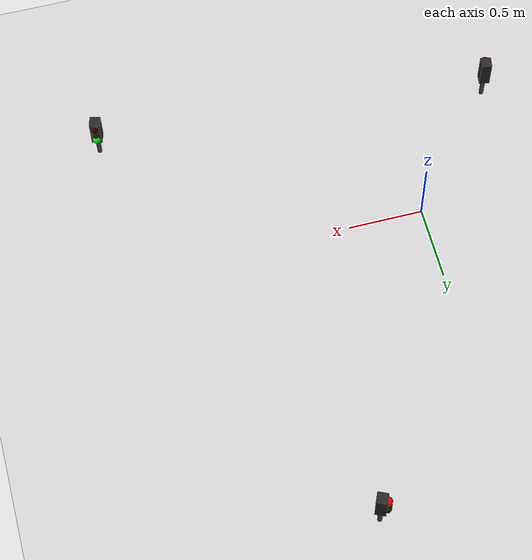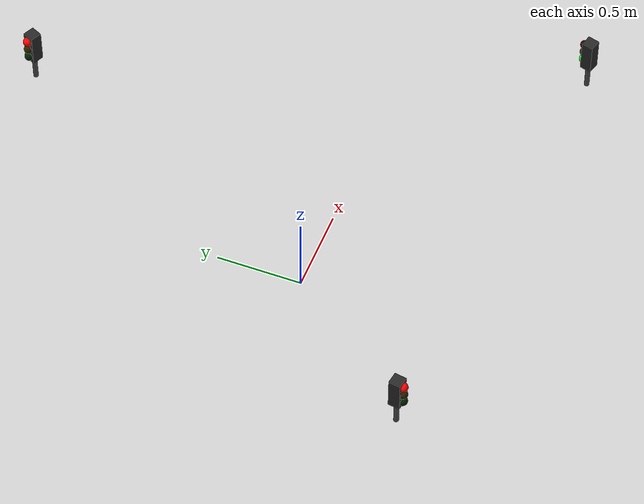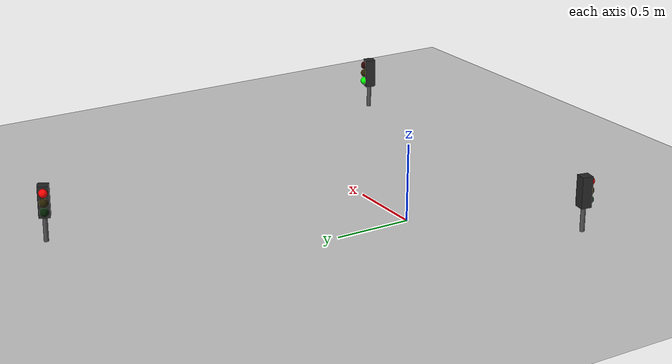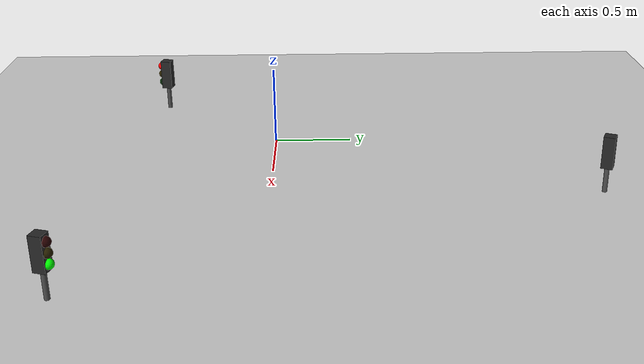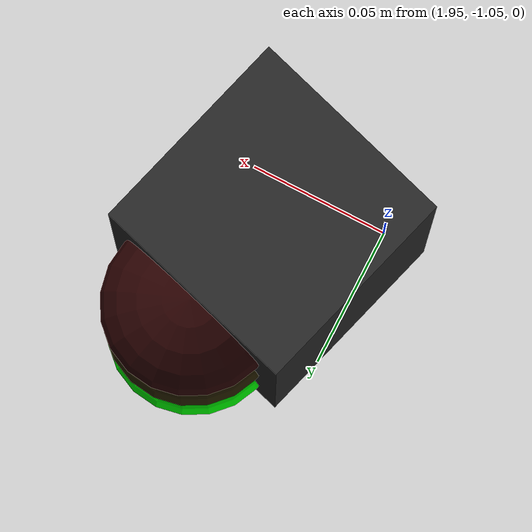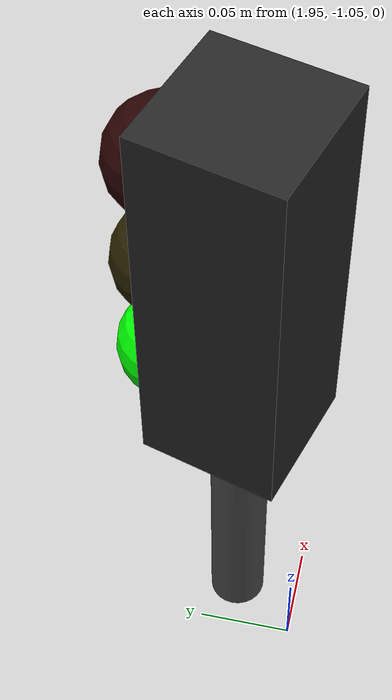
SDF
<?xml version="1.0" ?>
<!-- AUTO-GENERATED by gen_world.py. Edit track_path.py / gen_world.py instead. -->
<sdf version="1.6">
  <world name="traffic_light_track">

    <include><uri>model://sun</uri></include>

    <physics type="ode">
      <max_step_size>0.001</max_step_size>
      <real_time_factor>1.0</real_time_factor>
      <real_time_update_rate>1000</real_time_update_rate>
    </physics>

    <scene>
      <ambient>0.6 0.6 0.6 1</ambient>
      <background>0.7 0.8 0.9 1</background>
      <shadows>false</shadows>
    </scene>

    <!-- 8x8 m track ground, centered at world origin. -->
    <include>
      <uri>model://track_ground</uri>
      <pose>0 0 0 0 0 0</pose>
    </include>

    <include>
      <uri>model://traffic_light_red</uri>
      <name>light_red_1</name>
      <pose>0.8712 2.0069 0 0 0 2.7140</pose>
    </include>

    <include>
      <uri>model://traffic_light_green</uri>
      <name>light_green_2</name>
      <pose>1.9762 -1.0157 0 0 0 1.2847</pose>
    </include>

    <include>
      <uri>model://traffic_light_red</uri>
      <name>light_red_3</name>
      <pose>-0.6787 -0.8149 0 0 0 4.5446</pose>
    </include>

    <gui fullscreen="0">
      <camera name="user_camera">
        <pose>0 -1 9 0 1.1 1.5708</pose>
        <view_controller>orbit</view_controller>
      </camera>
    </gui>

  </world>
</sdf>

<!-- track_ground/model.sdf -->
<sdf version="1.6">
  <model name="track_ground">
    <static>true</static>
    <link name="link">
      <collision name="collision">
        <geometry>
          <plane>
            <normal>0 0 1</normal>
            <size>6 6</size>
          </plane>
        </geometry>
        <surface>
          <friction>
            <ode>
              <mu>100</mu>
              <mu2>50</mu2>
            </ode>
          </friction>
        </surface>
      </collision>
      <visual name="visual">
        <cast_shadows>false</cast_shadows>
        <geometry>
          <plane>
            <normal>0 0 1</normal>
            <size>6 6</size>
          </plane>
        </geometry>
        <material>
          <script>
            <uri>model://track_ground/materials/scripts/</uri>
            <uri>model://track_ground/materials/textures/</uri>
            <name>TrackGround/Image</name>
          </script>
        </material>
      </visual>
    </link>
  </model>
</sdf>

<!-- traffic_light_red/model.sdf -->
<!-- Low-profile traffic light (RED on). Bulbs sit around z=0.25 m so the
     robot's top camera (z=0.12 m, pitched ~9 deg up) sees them head-on. -->
<sdf version="1.6">
  <model name="traffic_light_red">
    <static>true</static>
    <link name="link">
      <!-- Post -->
      <visual name="post">
        <pose>0 0 0.09 0 0 0</pose>
        <geometry>
          <cylinder>
            <radius>0.015</radius>
            <length>0.18</length>
          </cylinder>
        </geometry>
        <material>
          <ambient>0.3 0.3 0.3 1</ambient>
          <diffuse>0.3 0.3 0.3 1</diffuse>
        </material>
      </visual>
      <collision name="post_collision">
        <pose>0 0 0.09 0 0 0</pose>
        <geometry>
          <cylinder>
            <radius>0.015</radius>
            <length>0.18</length>
          </cylinder>
        </geometry>
      </collision>

      <!-- Housing (vertical 3-light stack) -->
      <visual name="housing">
        <pose>0 0 0.26 0 0 0</pose>
        <geometry>
          <box>
            <size>0.07 0.07 0.20</size>
          </box>
        </geometry>
        <material>
          <ambient>0.15 0.15 0.15 1</ambient>
          <diffuse>0.15 0.15 0.15 1</diffuse>
        </material>
      </visual>

      <!-- Red light (ON - emissive) -->
      <visual name="red_light">
        <pose>0.036 0 0.32 0 0 0</pose>
        <geometry>
          <sphere><radius>0.028</radius></sphere>
        </geometry>
        <material>
          <ambient>1 0 0 1</ambient>
          <diffuse>1 0 0 1</diffuse>
          <specular>1 0 0 1</specular>
          <emissive>1 0 0 1</emissive>
        </material>
      </visual>

      <!-- Yellow light (OFF) -->
      <visual name="yellow_light">
        <pose>0.036 0 0.26 0 0 0</pose>
        <geometry>
          <sphere><radius>0.028</radius></sphere>
        </geometry>
        <material>
          <ambient>0.15 0.12 0.0 1</ambient>
          <diffuse>0.15 0.12 0.0 1</diffuse>
        </material>
      </visual>

      <!-- Green light (OFF) -->
      <visual name="green_light">
        <pose>0.036 0 0.20 0 0 0</pose>
        <geometry>
          <sphere><radius>0.028</radius></sphere>
        </geometry>
        <material>
          <ambient>0.0 0.12 0.0 1</ambient>
          <diffuse>0.0 0.12 0.0 1</diffuse>
        </material>
      </visual>

    </link>
  </model>
</sdf>

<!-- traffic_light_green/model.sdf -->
<!-- Low-profile traffic light (GREEN on). Bulbs sit around z=0.25 m so the
     robot's top camera (z=0.12 m, pitched ~9 deg up) sees them head-on. -->
<sdf version="1.6">
  <model name="traffic_light_green">
    <static>true</static>
    <link name="link">
      <!-- Post -->
      <visual name="post">
        <pose>0 0 0.09 0 0 0</pose>
        <geometry>
          <cylinder>
            <radius>0.015</radius>
            <length>0.18</length>
          </cylinder>
        </geometry>
        <material>
          <ambient>0.3 0.3 0.3 1</ambient>
          <diffuse>0.3 0.3 0.3 1</diffuse>
        </material>
      </visual>
      <collision name="post_collision">
        <pose>0 0 0.09 0 0 0</pose>
        <geometry>
          <cylinder>
            <radius>0.015</radius>
            <length>0.18</length>
          </cylinder>
        </geometry>
      </collision>

      <!-- Housing (vertical 3-light stack) -->
      <visual name="housing">
        <pose>0 0 0.26 0 0 0</pose>
        <geometry>
          <box>
            <size>0.07 0.07 0.20</size>
          </box>
        </geometry>
        <material>
          <ambient>0.15 0.15 0.15 1</ambient>
          <diffuse>0.15 0.15 0.15 1</diffuse>
        </material>
      </visual>

      <!-- Red light (OFF) -->
      <visual name="red_light">
        <pose>0.036 0 0.32 0 0 0</pose>
        <geometry>
          <sphere><radius>0.028</radius></sphere>
        </geometry>
        <material>
          <ambient>0.15 0.0 0.0 1</ambient>
          <diffuse>0.15 0.0 0.0 1</diffuse>
        </material>
      </visual>

      <!-- Yellow light (OFF) -->
      <visual name="yellow_light">
        <pose>0.036 0 0.26 0 0 0</pose>
        <geometry>
          <sphere><radius>0.028</radius></sphere>
        </geometry>
        <material>
          <ambient>0.15 0.12 0.0 1</ambient>
          <diffuse>0.15 0.12 0.0 1</diffuse>
        </material>
      </visual>

      <!-- Green light (ON - emissive) -->
      <visual name="green_light">
        <pose>0.036 0 0.20 0 0 0</pose>
        <geometry>
          <sphere><radius>0.028</radius></sphere>
        </geometry>
        <material>
          <ambient>0 1 0 1</ambient>
          <diffuse>0 1 0 1</diffuse>
          <specular>0 1 0 1</specular>
          <emissive>0 1 0 1</emissive>
        </material>
      </visual>

    </link>
  </model>
</sdf>
